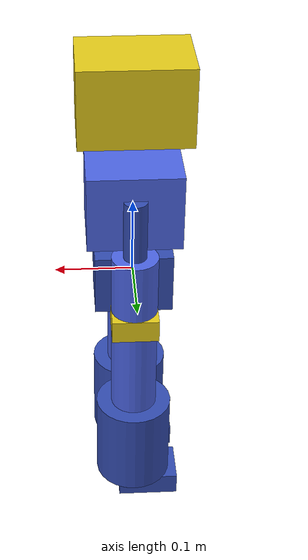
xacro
<robot name="mini_humanoid" xmlns:xacro="http://ros.org/wiki/xacro">

  <material name="gray">
    <color rgba="0.5 0.5 0.5 1.0"/>
  </material>
  <material name="blue_dark">
    <color rgba="0.2 0.3 0.7 1.0"/>
  </material>
  <material name="blue">
    <color rgba="0.3 0.4 0.9 1.0"/>
  </material>
  <material name="yellow">
    <color rgba="0.9 0.8 0.1 1.0"/>
  </material>
  <xacro:property name="torso_x" value="0.10" />
  <xacro:property name="torso_y" value="0.08" />
  <xacro:property name="torso_z_lower" value="0.08" />
  <xacro:property name="torso_z_upper" value="0.10" />
  <xacro:property name="head_x" value="0.14" />
  <xacro:property name="head_y" value="0.10" />
  <xacro:property name="head_z" value="0.10" />
  <xacro:property name="neck_joint_offset_z" value="0.02" />

  <xacro:property name="shoulder_radius"
 value="0.04" />
  <xacro:property name="upper_arm_len" value="0.08" />
  <xacro:property name="forearm_len" value="0.08" />
  <xacro:property name="hand_x" value="0.06" />
  <xacro:property name="hand_y" value="0.06" />
  <xacro:property name="hand_z" value="0.03" />

  <xacro:property name="hip_width_offset" value="0.01" />
  <xacro:property name="upper_leg_len" value="0.12" />
  <xacro:property name="lower_leg_len" value="0.12" />
  <xacro:property name="foot_x" value="0.08" />
  <xacro:property name="foot_y" value="0.06" />
  <xacro:property name="foot_z" value="0.03" />
  <xacro:property name="limb_a_thickness" value="0.015" />
  <xacro:property name="limb_b_thickness" value="0.03" />
  <xacro:property name="limb_c_thickness" value="0.02" />
  <xacro:property name="limb_d_thickness" value="0.04" />

  <xacro:macro name="dummy_inertia" params="mass">
    <inertial>
      <origin xyz="0 0 0" rpy="0 0 0"/>
      <mass value="${mass}"/>
      <inertia ixx="0.001" ixy="0" ixz="0" iyy="0.001" iyz="0" izz="0.001"/>
    </inertial>
  </xacro:macro>

  <link name="base_link">
    <visual>
      <origin xyz="0 0 0" rpy="0 0 0"/>
      <geometry>
        <box size="${torso_x} ${torso_y} ${torso_z_lower}"/>
      </geometry>
      <material name="blue_dark"/>
    </visual>
    <collision>
      <origin xyz="0 0 0" rpy="0 0 0"/>
      <geometry>
        <box size="${torso_x} ${torso_y} ${torso_z_lower}"/>
      </geometry>

    </collision>
    <xacro:dummy_inertia mass="0.8" />
  </link>

  <joint name="torso_yaw_joint" type="revolute">
    <parent link="base_link"/>
    <child link="torso_yaw_link"/>
    <origin xyz="0 0 ${torso_z_lower/2}" rpy="0 0 0"/>
    <axis xyz="0 0 1"/>
    <limit lower="-0.78" upper="0.78" velocity="1.0" effort="20"/>
  </joint>
  <link name="torso_yaw_link">
    <xacro:dummy_inertia mass="0.01" />
  </link>

  <joint name="torso_pitch_joint" type="revolute">
    <parent link="torso_yaw_link"/>
    <child link="torso_pitch_link"/>
    <origin xyz="0 0 0.02" rpy="0 0 0"/>
    <axis xyz="0 1 0"/>
    <limit lower="-0.52" upper="0.52"
 velocity="1.0" effort="20"/>
  </joint>

  <link name="torso_pitch_link">
    <visual>
      <origin xyz="0 0 ${torso_z_upper/2}" rpy="0 0 0"/>
      <geometry>
        <box size="${torso_x+0.02} ${torso_y+0.02} ${torso_z_upper}"/>
      </geometry>
      <material name="blue"/>
    </visual>
    <collision>
      <origin xyz="0 0 ${torso_z_upper/2}" rpy="0 0 0"/>
      <geometry>
        <box size="${torso_x+0.02} ${torso_y+0.02} ${torso_z_upper}"/>
      </geometry>

 </collision>
    <xacro:dummy_inertia mass="0.5" />
  </link>

  <joint name="neck_yaw_joint" type="revolute">
    <parent link="torso_pitch_link"/>
    <child link="neck_yaw_link"/>
    <origin xyz="0 0 ${torso_z_upper + neck_joint_offset_z}" rpy="0 0 0"/>
    <axis xyz="0 0 1"/>
    <limit lower="-1.57" upper="1.57" velocity="1.0" effort="10"/>
  </joint>
  <link name="neck_yaw_link">
    <xacro:dummy_inertia mass="0.01" />
  </link>

  <joint name="neck_pitch_joint" type="revolute">
    <parent link="neck_yaw_link"/>
    <child link="neck_pitch_link"/>
    <origin xyz="0 0 0.01" rpy="0 0 0"/>
    <axis xyz="0 1 0"/>
    <limit lower="-0.78"
 upper="0.78" velocity="1.0" effort="10"/>
  </joint>
  <link name="neck_pitch_link">
    <xacro:dummy_inertia mass="0.01" />
  </link>

  <joint name="neck_roll_joint" type="revolute">
    <parent link="neck_pitch_link"/>
    <child link="head"/>
    <origin xyz="0 0 0.01" rpy="0 0 0"/>
    <axis xyz="1 0 0"/>
    <limit lower="-0.78" upper="0.78" velocity="1.0" effort="10"/>
  </joint>

  <link name="head">
    <visual>
      <origin xyz="0 0 ${head_z/2}" rpy="0 0 0"/>
      <geometry>
        <box size="${head_x} ${head_y} ${head_z}"/>
      </geometry>
      <material name="yellow"/>
    </visual>
    <collision>
      <origin xyz="0 0 ${head_z/2}" rpy="0 0 0"/>
      <geometry>
        <box size="${head_x} ${head_y} ${head_z}"/>
      </geometry>
    </collision>
    <xacro:dummy_inertia mass="0.1" />
  </link>

  <xacro:macro name="arm" params="prefix side_y">

    <joint name="${prefix}_shoulder_yaw_joint" type="revolute">
      <parent link="torso_pitch_link"/>
      <child link="${prefix}_shoulder_yaw_link"/>
      <origin xyz="0 ${side_y*(torso_y/2 + shoulder_radius/2
 - 0.01)} ${torso_z_upper * 0.7}" rpy="0 0 0"/>
      <axis xyz="0 1 0"/>
      <limit lower="-1.57" upper="1.57" velocity="1.0" effort="10"/>
    </joint>
    <link name="${prefix}_shoulder_yaw_link">
      <xacro:dummy_inertia mass="0.01" />
    </link>

    <joint name="${prefix}_shoulder_pitch_joint" type="revolute">
      <parent link="${prefix}_shoulder_yaw_link"/>
      <child link="${prefix}_shoulder_pitch_link"/>
      <origin xyz="0 0 0" rpy="0 0 0"/>
      <axis xyz="1 0 0"/>
      <limit lower="-1.57" upper="1.57" velocity="1.0" effort="10"/>

    </joint>
    <link name="${prefix}_shoulder_pitch_link">
      <xacro:dummy_inertia mass="0.01" />
    </link>

    <joint name="${prefix}_shoulder_roll_joint" type="revolute">
      <parent link="${prefix}_shoulder_pitch_link"/>
      <child link="${prefix}_upper_arm"/>
      <origin xyz="0 0 0" rpy="0 0 0"/>
      <axis xyz="0 0 1"/>
      <limit lower="-1.57" upper="1.57" velocity="1.0" effort="10"/>
    </joint>

    <link name="${prefix}_upper_arm">
      <visual>
        <origin xyz="0 0 -${upper_arm_len/2}" rpy="0 0 0"/>

        <geometry>
          <cylinder radius="${limb_a_thickness}" length="${upper_arm_len}"/>
        </geometry>
        <material name="blue_dark"/>
      </visual>
      <collision>
        <origin xyz="0 0 -${upper_arm_len/2}" rpy="0 0 0"/>
        <geometry>
          <cylinder radius="${limb_a_thickness}" length="${upper_arm_len}"/>
        </geometry>
      </collision>

    <xacro:dummy_inertia mass="0.1" />
    </link>

    <joint name="${prefix}_elbow_joint" type="revolute">
      <parent link="${prefix}_upper_arm"/>
      <child link="${prefix}_forearm"/>
      <origin xyz="0 0 -${upper_arm_len}" rpy="0 0 0"/>
      <axis xyz="0 1 0"/>
      <limit lower="0" upper="2.35" velocity="1.0" effort="10"/>
    </joint>

    <link name="${prefix}_forearm">
      <visual>
        <origin xyz="0 0 -${forearm_len/2}" rpy="0 0 0"/>
        <geometry>

          <cylinder radius="${limb_b_thickness}" length="${forearm_len}"/>
        </geometry>
        <material name="blue"/>
      </visual>
      <collision>
        <origin xyz="0 0 -${forearm_len/2}" rpy="0 0 0"/>
        <geometry>
          <cylinder radius="${limb_b_thickness}" length="${forearm_len}"/>
        </geometry>
      </collision>
      <xacro:dummy_inertia mass="0.1" />
    </link>

  <joint name="${prefix}_wrist_roll_joint" type="revolute">
      <parent link="${prefix}_forearm"/>
      <child link="${prefix}_hand"/>
      <origin xyz="0 0 -${forearm_len}" rpy="0 0 0"/>
      <axis xyz="0 0 1"/>
      <limit lower="-1.57" upper="1.57" velocity="1.0" effort="10"/>
    </joint>

    <link name="${prefix}_hand">
      <visual>
        <origin xyz="0 0 -${hand_z/2}" rpy="0 0 0"/>
        <geometry>
          <box size="${hand_x} ${hand_y} ${hand_z}"/>

        </geometry>
        <material name="yellow"/>
      </visual>
      <collision>
        <origin xyz="0 0 -${hand_z/2}" rpy="0 0 0"/>
        <geometry>
          <box size="${hand_x} ${hand_y} ${hand_z}"/>
        </geometry>
      </collision>
      <xacro:dummy_inertia mass="0.05" />
    </link>
  </xacro:macro>

  <xacro:arm prefix="r" side_y="-1" />
  <xacro:arm prefix="l" side_y="1"
 />

  <xacro:macro name="leg" params="prefix side_y">

    <joint name="${prefix}_hip_yaw_joint" type="revolute">
      <parent link="base_link"/>
      <child link="${prefix}_hip_yaw_link"/>
      <origin xyz="0 ${side_y*(torso_y/2 + hip_width_offset)} -${torso_z_lower/2}" rpy="0 0 0"/>
      <axis xyz="0 0 1"/>
      <limit lower="-0.78" upper="0.78" velocity="1.0" effort="10"/>
    </joint>
    <link name="${prefix}_hip_yaw_link">
      <xacro:dummy_inertia mass="0.01" />
    </link>

    <joint name="${prefix}_hip_pitch_joint" type="revolute">
      <parent link="${prefix}_hip_yaw_link"/>

      <child link="${prefix}_upper_leg"/>
      <origin xyz="0 0 -0.02" rpy="0 0 0"/>
      <axis xyz="0 1 0"/>
      <limit lower="-1.57" upper="1.57" velocity="1.0" effort="10"/>
    </joint>

    <link name="${prefix}_upper_leg">
      <visual>
        <origin xyz="0 0 -${upper_leg_len/2}" rpy="0 0 0"/>
        <geometry>
          <cylinder radius="${limb_c_thickness+0.01}" length="${upper_leg_len}"/>
        </geometry>
        <material name="blue"/>

      </visual>
      <collision>
        <origin xyz="0 0 -${upper_leg_len/2}" rpy="0 0 0"/>
        <geometry>
          <cylinder radius="${limb_c_thickness+0.01}" length="${upper_leg_len}"/>
        </geometry>
      </collision>
      <xacro:dummy_inertia mass="0.2" />
    </link>

    <joint name="${prefix}_knee_joint" type="revolute">
      <parent link="${prefix}_upper_leg"/>
      <child link="${prefix}_lower_leg"/>
      <origin xyz="0 0 -${upper_leg_len}"
 rpy="0 0 0"/>
      <axis xyz="0 1 0"/>
      <limit lower="-2.35" upper="0" velocity="1.0" effort="10"/>
    </joint>

    <link name="${prefix}_lower_leg">
      <visual>
        <origin xyz="0 0 -${lower_leg_len/2}" rpy="0 0 0"/>
        <geometry>
          <cylinder radius="${limb_d_thickness+0.01}" length="${lower_leg_len}"/>
        </geometry>
        <material name="blue_dark"/>
      </visual>

    <collision>
        <origin xyz="0 0 -${lower_leg_len/2}" rpy="0 0 0"/>
        <geometry>
          <cylinder radius="${limb_d_thickness+0.01}" length="${lower_leg_len}"/>
        </geometry>
      </collision>
      <xacro:dummy_inertia mass="0.2" />
    </link>

    <joint name="${prefix}_ankle_pitch_joint" type="revolute">
      <parent link="${prefix}_lower_leg"/>
      <child link="${prefix}_ankle_pitch_link"/>
      <origin xyz="0 0 -${lower_leg_len}" rpy="0 0 0"/>

      <axis xyz="0 1 0"/>
      <limit lower="-0.78" upper="0.78" velocity="1.0" effort="10"/>
    </joint>
    <link name="${prefix}_ankle_pitch_link">
      <xacro:dummy_inertia mass="0.01" />
    </link>

    <joint name="${prefix}_ankle_roll_joint" type="revolute">
      <parent link="${prefix}_ankle_pitch_link"/>
      <child link="${prefix}_foot"/>
      <origin xyz="0 0 0" rpy="0 0 0"/>
      <axis xyz="1 0 0"/>
      <limit lower="-0.78" upper="0.78" velocity="1.0" effort="10"/>
    </joint>

    <link name="${prefix}_foot">

      <visual>
        <origin xyz="-${foot_x/4} 0 -${foot_z/2}" rpy="0 0 0"/>
        <geometry>
          <box size="${foot_x} ${foot_y} ${foot_z}"/>
        </geometry>
        <material name="blue_dark"/>
      </visual>
      <collision>
        <origin xyz="${foot_x/4} 0 -${foot_z/2}" rpy="0 0 0"/>
        <geometry>
          <box size="${foot_x} ${foot_y} ${foot_z}"/>

        </geometry>
      </collision>
      <xacro:dummy_inertia mass="0.1" />
    </link>

  </xacro:macro>

  <xacro:leg prefix="r" side_y="-1" />
  <xacro:leg prefix="l" side_y="1" />

</robot>
